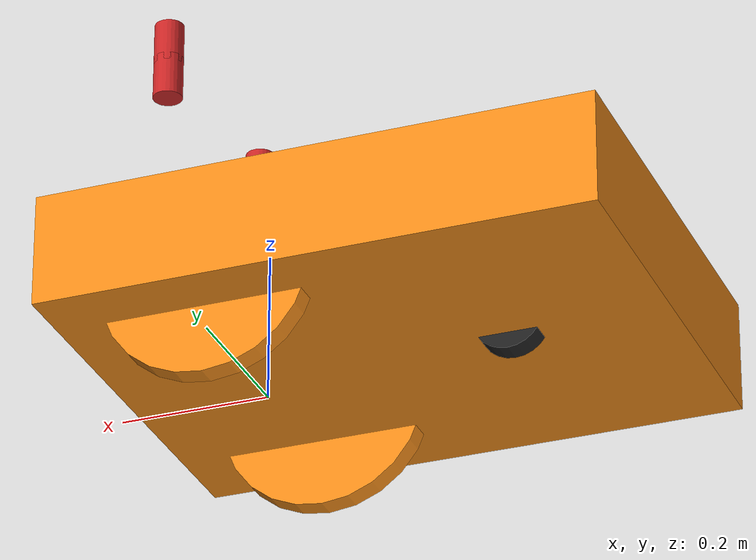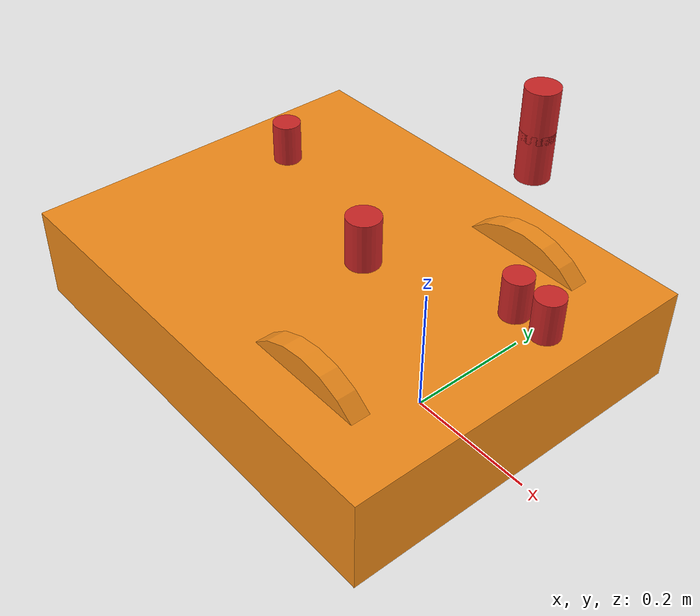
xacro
<?xml version="1.0"?>
<!-- Revolute-Revolute Manipulator -->
<robot name="icart_mini" xmlns:xacro="http://www.ros.org/wiki/xacro">
  <!-- Constants for robot dimensions -->
  <xacro:property name="PI" value="3.1415926535897931"/>

  <!-- Import Rviz colors -->
  <xacro:include filename="$(find hokuyo_navigation2)/urdf/materials.xacro" />
  <xacro:include filename="$(find hokuyo_navigation2)/urdf/arno.gazebo"/>

  <!-- Base Link -->
  <link name="base_link">
    <collision>
      <origin xyz="-0.17 0 0.1" rpy="0 0 0"/>
      <geometry>
	    <box size=".73 .58 .15"/>
      </geometry>
    </collision>

    <visual>
      <origin xyz="-0.17 0 0.1" rpy="0 0 0"/>
      <geometry>
	    <box size=".73 .58 .15"/>
      </geometry>
      <material name="orange"/>
    </visual>

    <collision name="collision">
      <origin xyz="-0.325 0.0 0.05" rpy="0 ${PI*0.5} ${PI*0.5}"/>
      <geometry>
        <cylinder  length="0.03" radius="0.04625"/>
      </geometry>
    </collision>
    <visual name="visual">
      <origin xyz="-0.325 0.0 0.05" rpy="0 ${PI*0.5} ${PI*0.5}"/>
      <geometry>
        <cylinder  length="0.03" radius="0.04625"/>
      </geometry>
    </visual>

    <inertial>
       <mass value="20" />
       <origin xyz="-0.08 0 0" rpy="0 0 0"/>
       <inertia ixx="1" ixy="0" ixz="0" iyy="1" iyz="0" izz="1" />
    </inertial>
  </link>

  <link name="left_wheel">
    <collision name="collision">
      <origin xyz="0 0.0 0" rpy="0 ${PI*0.5} ${PI*0.5}"/>
      <geometry>
         <cylinder  length="0.03" radius="0.1397"/>
      </geometry>
    </collision>
    <visual name="visual">
      <origin xyz="0 0.0 0" rpy="0 ${PI*0.5} ${PI*0.5}"/>
      <geometry>
        <cylinder  length="0.03" radius="0.1397"/>
      </geometry>
    </visual>
    <inertial>
      <mass value="1" />
      <origin xyz="0 0.0 0"/>
      <inertia ixx="0.1" ixy="0" ixz="0" iyy="0.1" iyz="0" izz="0.1" />
    </inertial>
  </link>

  <joint type="revolute" name="left_wheel_hinge">
    <origin xyz="0 0.198 0.075" rpy="0 0 0"/>
    <child link="left_wheel">left_wheel</child>
    <parent link="base_link">base_link</parent>
    <axis xyz="0 1 0"/>
    <limit effort="100" velocity="100.0"  lower="-5000" upper="5000" />
  </joint>

  <link name="right_wheel">
    <collision name="collision">
      <origin xyz="0 0.0 0" rpy="0 ${PI*0.5} ${PI*0.5}"/>
      <geometry>
         <cylinder  length="0.03" radius="0.1397"/>
      </geometry>
    </collision>
    <visual name="visual">
      <origin xyz="0 0.0 0" rpy="0 ${PI*0.5} ${PI*0.5}"/>
      <geometry>
        <cylinder  length="0.03" radius="0.1397"/>
      </geometry>
    </visual>
    <inertial>
      <mass value="1" />
      <origin xyz="0 0.0 0"/>
      <inertia ixx="0.1" ixy="0" ixz="0" iyy="0.1" iyz="0" izz="0.1" />
    </inertial>
  </link>

  <joint type="revolute" name="right_wheel_hinge">
    <origin xyz="0 -0.198 0.075" rpy="0 0 0"/>
    <child link="right_wheel">right_wheel</child>
    <parent link="base_link">base_link</parent>
    <axis xyz="0 1 0"/>
    <limit effort="100" velocity="100.0"  lower="-5000" upper="5000" />
  </joint>

  <transmission name="tran1">
    <type>transmission_interface/SimpleTransmission</type>
    <joint name="left_wheel_hinge">
      <hardwareInterface>VelocityJointInterface</hardwareInterface>
    </joint>
    <actuator name="left_motor">
      <hardwareInterface>VelocityJointInterface</hardwareInterface>
      <mechanicalReduction>1</mechanicalReduction>
    </actuator>
  </transmission>

  <transmission name="tran2">
    <type>transmission_interface/SimpleTransmission</type>
    <joint name="right_wheel_hinge">
      <hardwareInterface>VelocityJointInterface</hardwareInterface>
    </joint>
    <actuator name="right_motor">
      <hardwareInterface>VelocityJointInterface</hardwareInterface>
      <mechanicalReduction>1</mechanicalReduction>
    </actuator>
  </transmission>

  <joint name="base_scan_joint" type="fixed">
    <parent link="base_link"/>
    <child link="base_scan"/>
    <origin xyz="0.0 0.0 0.3" rpy="0 0 0"/>
  </joint>
  <link name="base_scan"/>

  <joint name="laser_joint1" type="fixed">
    <parent link="base_link"/>
    <child  link="ust"/>
    <origin xyz="0.2 0.0 0.30" rpy="0 0 0"/>
  </joint>
  <link name="ust">
    <visual>
      <origin xyz="0 0 0" rpy="0 0 0" />
      <geometry>
        <cylinder radius="0.02" length="0.06" />
      </geometry>
      <material name="red" />
    </visual>
    <collision>
      <origin xyz="0 0 0" rpy="0 0 0"/>
      <geometry>
        <cylinder radius="0.02" length="0.06" />
      </geometry>
    </collision>
  </link>

  <joint name="laser_joint2" type="fixed">
    <parent link="base_link"/>
    <child  link="ust2"/>
    <origin xyz="-0.3 0.0 0.30" rpy="0 0 ${PI}"/>
  </joint>
  <link name="ust2">
    <visual>
      <origin xyz="0 0 0" rpy="0 0 0" />
      <geometry>
        <cylinder radius="0.02" length="0.06" />
      </geometry>
      <material name="red" />
    </visual>
    <collision>
      <origin xyz="0 0 0" rpy="0 0 0"/>
      <geometry>
        <cylinder radius="0.02" length="0.06" />
      </geometry>
    </collision>
  </link>

  <joint name="laser_joint3" type="fixed">
    <parent link="base_link"/>
    <child  link="yvt"/>
    <origin xyz="0.15 0 0.50" rpy="0 0 0"/>
  </joint>
  <link name="yvt">
    <visual>
      <origin xyz="0 0 0" rpy="0 0 0" />
      <geometry>
        <cylinder radius="0.02" length="0.06" />
      </geometry>
      <material name="red" />
    </visual>
    <collision>
      <origin xyz="0 0 0" rpy="0 0 0"/>
      <geometry>
        <cylinder radius="0.02" length="0.06" />
      </geometry>
    </collision>
  </link>

  <joint name="laser_joint4" type="fixed">
    <parent link="base_link"/>
    <child  link="ylm"/>
    <origin xyz="0.15 0 0.3" rpy="0 0 0"/>
  </joint>
  <link name="ylm">
    <visual>
      <origin xyz="0 0 0" rpy="0 0 0" />
      <geometry>
        <cylinder radius="0.02" length="0.06" />
      </geometry>
      <material name="red" />
    </visual>
    <collision>
      <origin xyz="0 0 0" rpy="0 0 0"/>
      <geometry>
        <cylinder radius="0.02" length="0.06" />
      </geometry>
    </collision>
  </link>

  <joint name="camera_joint" type="fixed">
    <parent link="base_link"/>
    <child  link="camera"/>
    <origin xyz="0.10 -0.20 0.45" rpy="0 0 0"/>
  </joint>
  <link name="camera">
    <visual>
      <origin xyz="0 0 0" rpy="0 0 0" />
      <geometry>
        <cylinder radius="0.02" length="0.06" />
      </geometry>
      <material name="red" />
    </visual>
    <collision>
      <origin xyz="0 0 0" rpy="0 0 0"/>
      <geometry>
        <cylinder radius="0.02" length="0.06" />
      </geometry>
    </collision>
  </link>

  <joint name="gnss_joint" type="fixed">
    <parent link="base_link"/>
    <child  link="gnss"/>
    <origin xyz="0.15 0.0 0.55" rpy="0 0 0"/>
  </joint>
  <link name="gnss">
    <visual>
      <origin xyz="0 0 0" rpy="0 0 0" />
      <geometry>
        <cylinder radius="0.02" length="0.06" />
      </geometry>
      <material name="red" />
    </visual>
    <collision>
      <origin xyz="0 0 0" rpy="0 0 0"/>
      <geometry>
        <cylinder radius="0.02" length="0.06" />
      </geometry>
    </collision>
  </link>
</robot>
